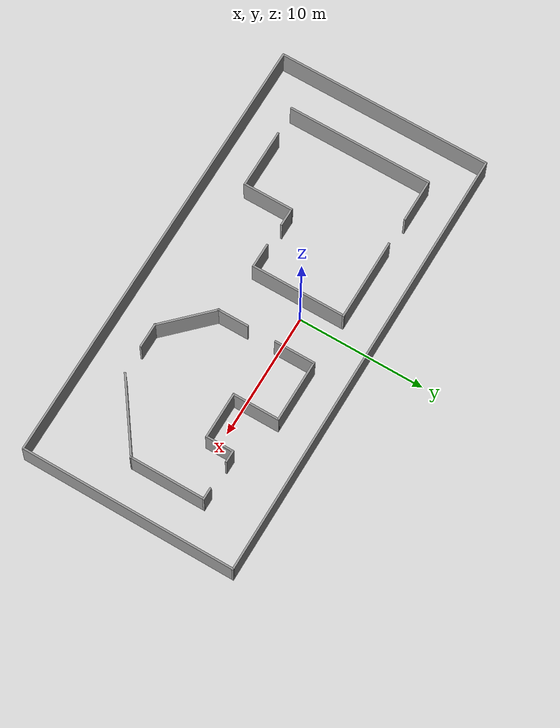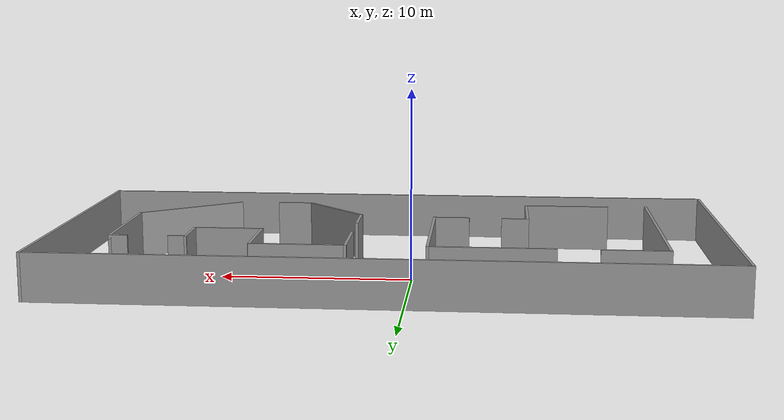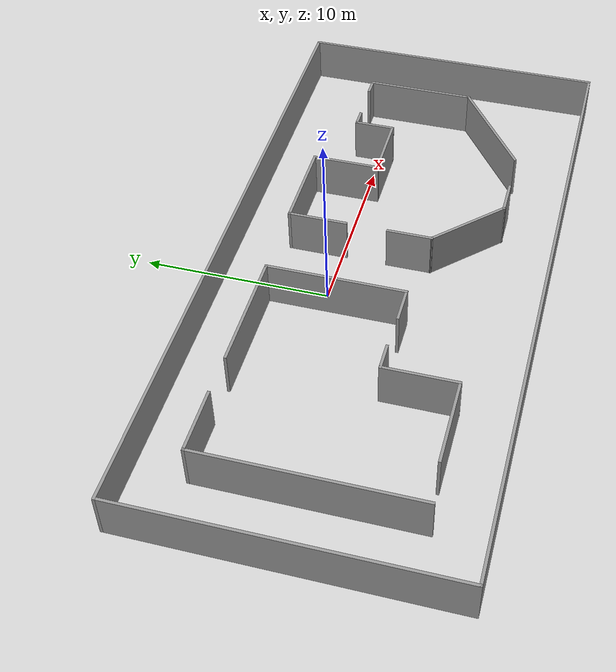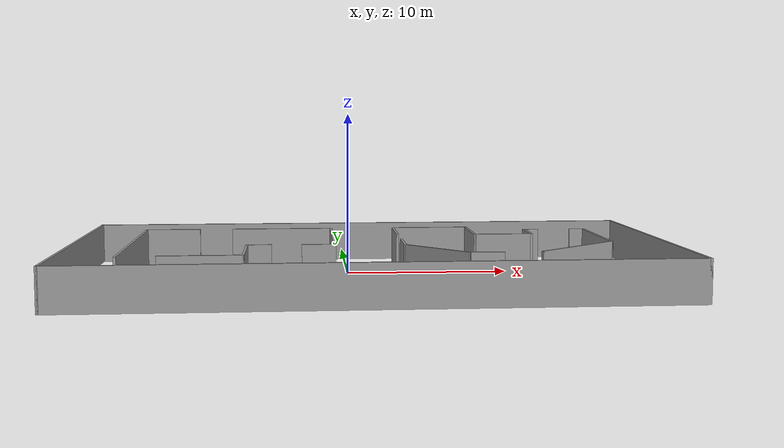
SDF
<?xml version='1.0'?>
<sdf version='1.6'>
  <model name='openfloorplan'>
    <pose frame=''>1.21974 -2.65231 0 0 -0 0</pose>
    <link name='Wall_11'>
      <collision name='Wall_11_Collision'>
        <geometry>
          <box>
            <size>11.5 0.15 2.5</size>
          </box>
        </geometry>
        <pose frame=''>0 0 1.25 0 -0 0</pose>
      </collision>
      <visual name='Wall_11_Visual'>
        <pose frame=''>0 0 1.25 0 -0 0</pose>
        <geometry>
          <box>
            <size>11.5 0.15 2.5</size>
          </box>
        </geometry>
        <material>
          <script>
            <uri>file://media/materials/scripts/gazebo.material</uri>
            <name>Gazebo/Grey</name>
          </script>
          <ambient>1 1 1 1</ambient>
        </material>
        <meta>
          <layer>0</layer>
        </meta>
      </visual>
      <pose frame=''>-14.1538 -0.047052 0 0 -0 -1.5708</pose>
    </link>
    <link name='Wall_13'>
      <collision name='Wall_13_Collision'>
        <geometry>
          <box>
            <size>4.75 0.15 2.5</size>
          </box>
        </geometry>
        <pose frame=''>0 0 1.25 0 -0 0</pose>
      </collision>
      <visual name='Wall_13_Visual'>
        <pose frame=''>0 0 1.25 0 -0 0</pose>
        <geometry>
          <box>
            <size>4.75 0.15 2.5</size>
          </box>
        </geometry>
        <material>
          <script>
            <uri>file://media/materials/scripts/gazebo.material</uri>
            <name>Gazebo/Grey</name>
          </script>
          <ambient>1 1 1 1</ambient>
        </material>
        <meta>
          <layer>0</layer>
        </meta>
      </visual>
      <pose frame=''>-9.62061 -5.53779 0 0 -0 0</pose>
    </link>
    <link name='Wall_14'>
      <collision name='Wall_14_Collision'>
        <geometry>
          <box>
            <size>4 0.15 2.5</size>
          </box>
        </geometry>
        <pose frame=''>0 0 1.25 0 -0 0</pose>
      </collision>
      <visual name='Wall_14_Visual'>
        <pose frame=''>0 0 1.25 0 -0 0</pose>
        <geometry>
          <box>
            <size>4 0.15 2.5</size>
          </box>
        </geometry>
        <material>
          <script>
            <uri>file://media/materials/scripts/gazebo.material</uri>
            <name>Gazebo/Grey</name>
          </script>
          <ambient>1 1 1 1</ambient>
        </material>
        <meta>
          <layer>0</layer>
        </meta>
      </visual>
      <pose frame=''>-7.32061 -3.61279 0 0 -0 1.5708</pose>
    </link>
    <link name='Wall_16'>
      <collision name='Wall_16_Collision'>
        <geometry>
          <box>
            <size>3.5 0.15 2.5</size>
          </box>
        </geometry>
        <pose frame=''>0 0 1.25 0 -0 0</pose>
      </collision>
      <visual name='Wall_16_Visual'>
        <pose frame=''>0 0 1.25 0 -0 0</pose>
        <geometry>
          <box>
            <size>3.5 0.15 2.5</size>
          </box>
        </geometry>
        <material>
          <script>
            <uri>file://media/materials/scripts/gazebo.material</uri>
            <name>Gazebo/Grey</name>
          </script>
          <ambient>1 1 1 1</ambient>
        </material>
        <meta>
          <layer>0</layer>
        </meta>
      </visual>
      <pose frame=''>-12.4788 5.62795 0 0 -0 0</pose>
    </link>
    <link name='Wall_18'>
      <collision name='Wall_18_Collision'>
        <geometry>
          <box>
            <size>1.5 0.15 2.5</size>
          </box>
        </geometry>
        <pose frame=''>0 0 1.25 0 -0 0</pose>
      </collision>
      <visual name='Wall_18_Visual'>
        <pose frame=''>0 0 1.25 0 -0 0</pose>
        <geometry>
          <box>
            <size>1.5 0.15 2.5</size>
          </box>
        </geometry>
        <material>
          <script>
            <uri>file://media/materials/scripts/gazebo.material</uri>
            <name>Gazebo/Grey</name>
          </script>
          <ambient>1 1 1 1</ambient>
        </material>
        <meta>
          <layer>0</layer>
        </meta>
      </visual>
      <pose frame=''>-6.64561 -1.68779 0 0 -0 0</pose>
    </link>
    <link name='Wall_20'>
      <collision name='Wall_20_Collision'>
        <geometry>
          <box>
            <size>2 0.15 2.5</size>
          </box>
        </geometry>
        <pose frame=''>0 0 1.25 0 -0 0</pose>
      </collision>
      <visual name='Wall_20_Visual'>
        <pose frame=''>0 0 1.25 0 -0 0</pose>
        <geometry>
          <box>
            <size>2 0.15 2.5</size>
          </box>
        </geometry>
        <material>
          <script>
            <uri>file://media/materials/scripts/gazebo.material</uri>
            <name>Gazebo/Grey</name>
          </script>
          <ambient>1 1 1 1</ambient>
        </material>
        <meta>
          <layer>0</layer>
        </meta>
      </visual>
      <pose frame=''>-3.13307 -1.76936 0 0 -0 0</pose>
    </link>
    <link name='Wall_21'>
      <collision name='Wall_21_Collision'>
        <geometry>
          <box>
            <size>7.5 0.15 2.5</size>
          </box>
        </geometry>
        <pose frame=''>0 0 1.25 0 -0 0</pose>
      </collision>
      <visual name='Wall_21_Visual'>
        <pose frame=''>0 0 1.25 0 -0 0</pose>
        <geometry>
          <box>
            <size>7.5 0.15 2.5</size>
          </box>
        </geometry>
        <material>
          <script>
            <uri>file://media/materials/scripts/gazebo.material</uri>
            <name>Gazebo/Grey</name>
          </script>
          <ambient>1 1 1 1</ambient>
        </material>
        <meta>
          <layer>0</layer>
        </meta>
      </visual>
      <pose frame=''>-2.20806 1.90565 0 0 -0 1.5708</pose>
    </link>
    <link name='Wall_22'>
      <collision name='Wall_22_Collision'>
        <geometry>
          <box>
            <size>6.5 0.15 2.5</size>
          </box>
        </geometry>
        <pose frame=''>0 0 1.25 0 -0 0</pose>
      </collision>
      <visual name='Wall_22_Visual'>
        <pose frame=''>0 0 1.25 0 -0 0</pose>
        <geometry>
          <box>
            <size>6.5 0.15 2.5</size>
          </box>
        </geometry>
        <material>
          <script>
            <uri>file://media/materials/scripts/gazebo.material</uri>
            <name>Gazebo/Grey</name>
          </script>
          <ambient>1 1 1 1</ambient>
        </material>
        <meta>
          <layer>0</layer>
        </meta>
      </visual>
      <pose frame=''>-5.38307 5.58064 0 0 -0 3.14159</pose>
    </link>
    <link name='Wall_25'>
      <collision name='Wall_25_Collision'>
        <geometry>
          <box>
            <size>3.25 0.15 2.5</size>
          </box>
        </geometry>
        <pose frame=''>0 0 1.25 0 -0 0</pose>
      </collision>
      <visual name='Wall_25_Visual'>
        <pose frame=''>0 0 1.25 0 -0 0</pose>
        <geometry>
          <box>
            <size>3.25 0.15 2.5</size>
          </box>
        </geometry>
        <material>
          <script>
            <uri>file://media/materials/scripts/gazebo.material</uri>
            <name>Gazebo/Grey</name>
          </script>
          <ambient>1 1 1 1</ambient>
        </material>
        <meta>
          <layer>0</layer>
        </meta>
      </visual>
      <pose frame=''>1.897 4.03142 0 0 -0 -1.5708</pose>
    </link>
    <link name='Wall_27'>
      <collision name='Wall_27_Collision'>
        <geometry>
          <box>
            <size>2.5 0.15 2.5</size>
          </box>
        </geometry>
        <pose frame=''>0 0 1.25 0 -0 0</pose>
      </collision>
      <visual name='Wall_27_Visual'>
        <pose frame=''>0 0 1.25 0 -0 0</pose>
        <geometry>
          <box>
            <size>2.5 0.15 2.5</size>
          </box>
        </geometry>
        <material>
          <script>
            <uri>file://media/materials/scripts/gazebo.material</uri>
            <name>Gazebo/Grey</name>
          </script>
          <ambient>1 1 1 1</ambient>
        </material>
        <meta>
          <layer>0</layer>
        </meta>
      </visual>
      <pose frame=''>1.897 -0.99035 0 0 -0 -1.5708</pose>
    </link>
    <link name='Wall_28'>
      <collision name='Wall_28_Collision'>
        <geometry>
          <box>
            <size>4.75 0.15 2.5</size>
          </box>
        </geometry>
        <pose frame=''>0 0 1.25 0 -0 0</pose>
      </collision>
      <visual name='Wall_28_Visual'>
        <pose frame=''>0 0 1.25 0 -0 0</pose>
        <geometry>
          <box>
            <size>4.75 0.15 2.5</size>
          </box>
        </geometry>
        <material>
          <script>
            <uri>file://media/materials/scripts/gazebo.material</uri>
            <name>Gazebo/Grey</name>
          </script>
          <ambient>1 1 1 1</ambient>
        </material>
        <meta>
          <layer>0</layer>
        </meta>
      </visual>
      <pose frame=''>3.52334 -3.7917 0 0 -0 -0.785398</pose>
    </link>
    <link name='Wall_33'>
      <collision name='Wall_33_Collision'>
        <geometry>
          <box>
            <size>6 0.15 2.5</size>
          </box>
        </geometry>
        <pose frame=''>0 0 1.25 0 -0 0</pose>
      </collision>
      <visual name='Wall_33_Visual'>
        <pose frame=''>0 0 1.25 0 -0 0</pose>
        <geometry>
          <box>
            <size>6 0.15 2.5</size>
          </box>
        </geometry>
        <material>
          <script>
            <uri>file://media/materials/scripts/gazebo.material</uri>
            <name>Gazebo/Grey</name>
          </script>
          <ambient>1 1 1 1</ambient>
        </material>
        <meta>
          <layer>0</layer>
        </meta>
      </visual>
      <pose frame=''>14.3053 1.21706 0 0 -0 1.5708</pose>
    </link>
    <link name='Wall_36'>
      <collision name='Wall_36_Collision'>
        <geometry>
          <box>
            <size>2 0.15 2.5</size>
          </box>
        </geometry>
        <pose frame=''>0 0 1.25 0 -0 0</pose>
      </collision>
      <visual name='Wall_36_Visual'>
        <pose frame=''>0 0 1.25 0 -0 0</pose>
        <geometry>
          <box>
            <size>2 0.15 2.5</size>
          </box>
        </geometry>
        <material>
          <script>
            <uri>file://media/materials/scripts/gazebo.material</uri>
            <name>Gazebo/Grey</name>
          </script>
          <ambient>1 1 1 1</ambient>
        </material>
        <meta>
          <layer>0</layer>
        </meta>
      </visual>
      <pose frame=''>6.07469 -5.41804 0 0 -0 0</pose>
    </link>
    <link name='Wall_38'>
      <collision name='Wall_38_Collision'>
        <geometry>
          <box>
            <size>6.31845 0.15 2.5</size>
          </box>
        </geometry>
        <pose frame=''>0 0 1.25 0 -0 0</pose>
      </collision>
      <visual name='Wall_38_Visual'>
        <pose frame=''>0 0 1.25 0 -0 0</pose>
        <geometry>
          <box>
            <size>6.31845 0.15 2.5</size>
          </box>
        </geometry>
        <material>
          <script>
            <uri>file://media/materials/scripts/gazebo.material</uri>
            <name>Gazebo/Grey</name>
          </script>
          <ambient>1 1 1 1</ambient>
        </material>
        <meta>
          <layer>0</layer>
        </meta>
      </visual>
      <pose frame=''>11.7998 -3.50656 0 0 -0 0.622621</pose>
    </link>
    <link name='Wall_40'>
      <collision name='Wall_40_Collision'>
        <geometry>
          <box>
            <size>5 0.15 2.5</size>
          </box>
        </geometry>
        <pose frame=''>0 0 1.25 0 -0 0</pose>
      </collision>
      <visual name='Wall_40_Visual'>
        <pose frame=''>0 0 1.25 0 -0 0</pose>
        <geometry>
          <box>
            <size>5 0.15 2.5</size>
          </box>
        </geometry>
        <material>
          <script>
            <uri>file://media/materials/scripts/gazebo.material</uri>
            <name>Gazebo/Grey</name>
          </script>
          <ambient>1 1 1 1</ambient>
        </material>
        <meta>
          <layer>0</layer>
        </meta>
      </visual>
      <pose frame=''>4.322 5.58142 0 0 -0 0</pose>
    </link>
    <link name='Wall_41'>
      <collision name='Wall_41_Collision'>
        <geometry>
          <box>
            <size>3.75 0.15 2.5</size>
          </box>
        </geometry>
        <pose frame=''>0 0 1.25 0 -0 0</pose>
      </collision>
      <visual name='Wall_41_Visual'>
        <pose frame=''>0 0 1.25 0 -0 0</pose>
        <geometry>
          <box>
            <size>3.75 0.15 2.5</size>
          </box>
        </geometry>
        <material>
          <script>
            <uri>file://media/materials/scripts/gazebo.material</uri>
            <name>Gazebo/Grey</name>
          </script>
          <ambient>1 1 1 1</ambient>
        </material>
        <meta>
          <layer>0</layer>
        </meta>
      </visual>
      <pose frame=''>6.747 3.78142 0 0 -0 -1.5708</pose>
    </link>
    <link name='Wall_42'>
      <collision name='Wall_42_Collision'>
        <geometry>
          <box>
            <size>3.75 0.15 2.5</size>
          </box>
        </geometry>
        <pose frame=''>0 0 1.25 0 -0 0</pose>
      </collision>
      <visual name='Wall_42_Visual'>
        <pose frame=''>0 0 1.25 0 -0 0</pose>
        <geometry>
          <box>
            <size>3.75 0.15 2.5</size>
          </box>
        </geometry>
        <material>
          <script>
            <uri>file://media/materials/scripts/gazebo.material</uri>
            <name>Gazebo/Grey</name>
          </script>
          <ambient>1 1 1 1</ambient>
        </material>
        <meta>
          <layer>0</layer>
        </meta>
      </visual>
      <pose frame=''>8.547 1.98142 0 0 -0 0</pose>
    </link>
    <link name='Wall_43'>
      <collision name='Wall_43_Collision'>
        <geometry>
          <box>
            <size>2.25 0.15 2.5</size>
          </box>
        </geometry>
        <pose frame=''>0 0 1.25 0 -0 0</pose>
      </collision>
      <visual name='Wall_43_Visual'>
        <pose frame=''>0 0 1.25 0 -0 0</pose>
        <geometry>
          <box>
            <size>2.25 0.15 2.5</size>
          </box>
        </geometry>
        <material>
          <script>
            <uri>file://media/materials/scripts/gazebo.material</uri>
            <name>Gazebo/Grey</name>
          </script>
          <ambient>1 1 1 1</ambient>
        </material>
        <meta>
          <layer>0</layer>
        </meta>
      </visual>
      <pose frame=''>10.347 3.03142 0 0 -0 1.5708</pose>
    </link>
    <link name='Wall_44'>
      <collision name='Wall_44_Collision'>
        <geometry>
          <box>
            <size>1 0.15 2.5</size>
          </box>
        </geometry>
        <pose frame=''>0 0 1.25 0 -0 0</pose>
      </collision>
      <visual name='Wall_44_Visual'>
        <pose frame=''>0 0 1.25 0 -0 0</pose>
        <geometry>
          <box>
            <size>1 0.15 2.5</size>
          </box>
        </geometry>
        <material>
          <script>
            <uri>file://media/materials/scripts/gazebo.material</uri>
            <name>Gazebo/Grey</name>
          </script>
          <ambient>1 1 1 1</ambient>
        </material>
        <meta>
          <layer>0</layer>
        </meta>
      </visual>
      <pose frame=''>10.772 4.08142 0 0 -0 0</pose>
    </link>
    <link name='Wall_46'>
      <collision name='Wall_46_Collision'>
        <geometry>
          <box>
            <size>1 0.15 2.5</size>
          </box>
        </geometry>
        <pose frame=''>0 0 1.25 0 -0 0</pose>
      </collision>
      <visual name='Wall_46_Visual'>
        <pose frame=''>0 0 1.25 0 -0 0</pose>
        <geometry>
          <box>
            <size>1 0.15 2.5</size>
          </box>
        </geometry>
        <material>
          <script>
            <uri>file://media/materials/scripts/gazebo.material</uri>
            <name>Gazebo/Grey</name>
          </script>
          <ambient>1 1 1 1</ambient>
        </material>
        <meta>
          <layer>0</layer>
        </meta>
      </visual>
      <pose frame=''>13.8803 4.14206 0 0 -0 3.14159</pose>
    </link>
    <link name='Wall_5'>
      <collision name='Wall_5_Collision'>
        <geometry>
          <box>
            <size>17 0.15 2.5</size>
          </box>
        </geometry>
        <pose frame=''>0 0 1.25 0 -0 0</pose>
      </collision>
      <visual name='Wall_5_Visual'>
        <pose frame=''>0 0 1.25 0 -0 0</pose>
        <geometry>
          <box>
            <size>17 0.15 2.5</size>
          </box>
        </geometry>
        <material>
          <script>
            <uri>file://media/materials/scripts/gazebo.material</uri>
            <name>Gazebo/Grey</name>
          </script>
          <ambient>1 1 1 1</ambient>
        </material>
        <meta>
          <layer>0</layer>
        </meta>
      </visual>
      <pose frame=''>17.55 -0 0 0 -0 1.5708</pose>
    </link>
    <link name='Wall_6'>
      <collision name='Wall_6_Collision'>
        <geometry>
          <box>
            <size>35.25 0.15 2.5</size>
          </box>
        </geometry>
        <pose frame=''>0 0 1.25 0 -0 0</pose>
      </collision>
      <visual name='Wall_6_Visual'>
        <pose frame=''>0 0 1.25 0 -0 0</pose>
        <geometry>
          <box>
            <size>35.25 0.15 2.5</size>
          </box>
        </geometry>
        <material>
          <script>
            <uri>file://media/materials/scripts/gazebo.material</uri>
            <name>Gazebo/Grey</name>
          </script>
          <ambient>1 1 1 1</ambient>
        </material>
        <meta>
          <layer>0</layer>
        </meta>
      </visual>
      <pose frame=''>0 8.425 0 0 -0 3.14159</pose>
    </link>
    <link name='Wall_8'>
      <collision name='Wall_8_Collision'>
        <geometry>
          <box>
            <size>17 0.15 2.5</size>
          </box>
        </geometry>
        <pose frame=''>0 0 1.25 0 -0 0</pose>
      </collision>
      <visual name='Wall_8_Visual'>
        <pose frame=''>0 0 1.25 0 -0 0</pose>
        <geometry>
          <box>
            <size>17 0.15 2.5</size>
          </box>
        </geometry>
        <material>
          <script>
            <uri>file://media/materials/scripts/gazebo.material</uri>
            <name>Gazebo/Grey</name>
          </script>
          <ambient>1 1 1 1</ambient>
        </material>
        <meta>
          <layer>0</layer>
        </meta>
      </visual>
      <pose frame=''>-17.55 -0 0 0 -0 -1.5708</pose>
    </link>
    <link name='Wall_9'>
      <collision name='Wall_9_Collision'>
        <geometry>
          <box>
            <size>35.25 0.15 2.5</size>
          </box>
        </geometry>
        <pose frame=''>0 0 1.25 0 -0 0</pose>
      </collision>
      <visual name='Wall_9_Visual'>
        <pose frame=''>0 0 1.25 0 -0 0</pose>
        <geometry>
          <box>
            <size>35.25 0.15 2.5</size>
          </box>
        </geometry>
        <material>
          <script>
            <uri>file://media/materials/scripts/gazebo.material</uri>
            <name>Gazebo/Grey</name>
          </script>
          <ambient>1 1 1 1</ambient>
        </material>
        <meta>
          <layer>0</layer>
        </meta>
      </visual>
      <pose frame=''>0 -8.425 0 0 -0 0</pose>
    </link>
    <static>1</static>
  </model>
</sdf>
